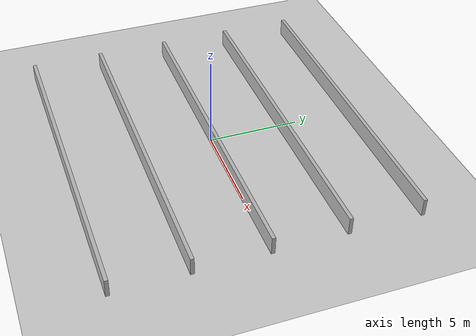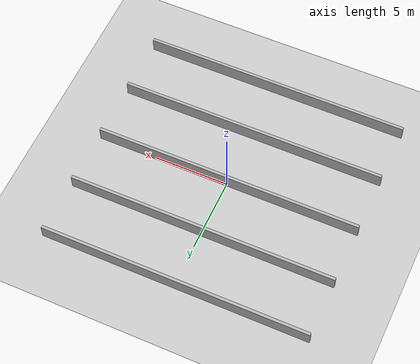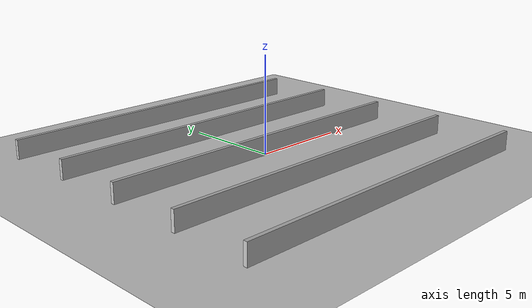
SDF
<?xml version="1.0" ?>
<sdf version='1.7'>
  <world name='serpentine_layout_world'>
    <plugin
      name="gz::sim::systems::Physics"
      filename="gz-sim-physics-system">
    </plugin>
    <plugin
      name="gz::sim::systems::UserCommands"
      filename="gz-sim-user-commands-system">
    </plugin>
    <plugin
      name="gz::sim::systems::SceneBroadcaster"
      filename="gz-sim-scene-broadcaster-system">
    </plugin>
    <light name='sun' type='directional'>
      <cast_shadows>true</cast_shadows>
      <pose>0 0 10 0 0 0</pose>
      <diffuse>0.8 0.8 0.8 1</diffuse>
      <specular>0.2 0.2 0.2 1</specular>
      <direction>-0.5 0.1 -0.9</direction>
    </light>
    <model name='ground_plane'>
      <static>true</static>
      <link name='link'>
        <collision name='collision'>
          <geometry><plane><normal>0 0 1</normal><size>100 100</size></plane></geometry>
        </collision>
        <visual name='visual'>
          <geometry><plane><normal>0 0 1</normal><size>100 100</size></plane></geometry>
          <material><ambient>0.8 0.8 0.8 1</ambient><diffuse>0.8 0.8 0.8 1</diffuse><specular>0.8 0.8 0.8 1</specular></material>
        </visual>
      </link>
    </model>

    <model name='serpentine_walls'>
      <pose>0 0 0 0 0 0</pose>
      <static>true</static>
      <link name='wall_1'>
        <pose>0 8 0.5 0 0 0</pose>
        <visual name='visual'><geometry><box><size>18 0.2 1</size></box></geometry></visual>
        <collision name='collision'><geometry><box><size>18 0.2 1</size></box></geometry></collision>
      </link>
      <link name='wall_2'>
        <pose>0 4 0.5 0 0 0</pose>
        <visual name='visual'><geometry><box><size>18 0.2 1</size></box></geometry></visual>
        <collision name='collision'><geometry><box><size>18 0.2 1</size></box></geometry></collision>
      </link>
      <link name='wall_3'>
        <pose>0 0 0.5 0 0 0</pose>
        <visual name='visual'><geometry><box><size>18 0.2 1</size></box></geometry></visual>
        <collision name='collision'><geometry><box><size>18 0.2 1</size></box></geometry></collision>
      </link>
      <link name='wall_4'>
        <pose>0 -4 0.5 0 0 0</pose>
        <visual name='visual'><geometry><box><size>18 0.2 1</size></box></geometry></visual>
        <collision name='collision'><geometry><box><size>18 0.2 1</size></box></geometry></collision>
      </link>
      <link name='wall_5'>
        <pose>0 -8 0.5 0 0 0</pose>
        <visual name='visual'><geometry><box><size>18 0.2 1</size></box></geometry></visual>
        <collision name='collision'><geometry><box><size>18 0.2 1</size></box></geometry></collision>
      </link>
    </model>
  </world>
</sdf>
